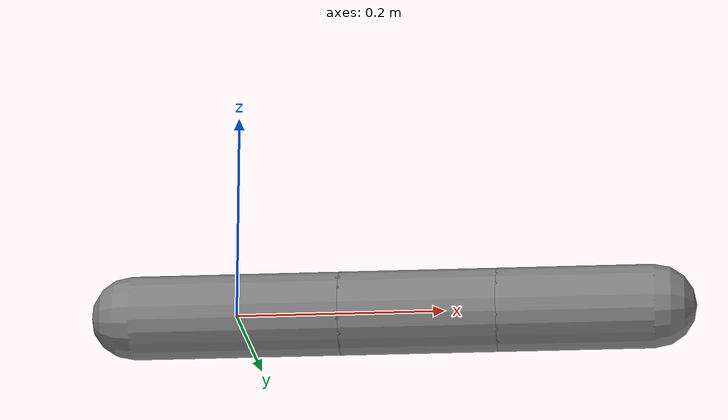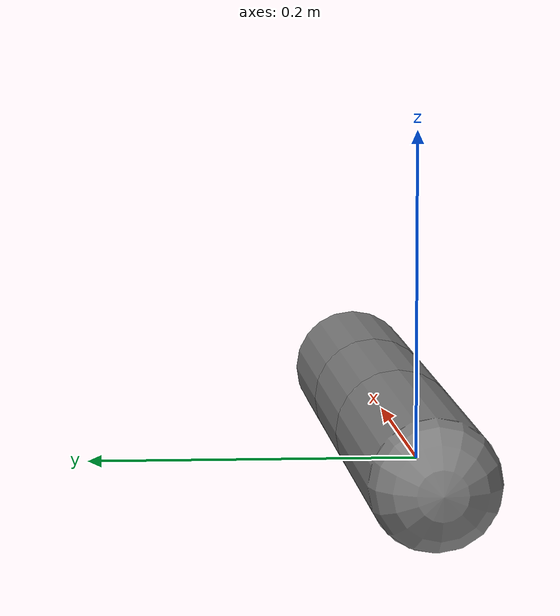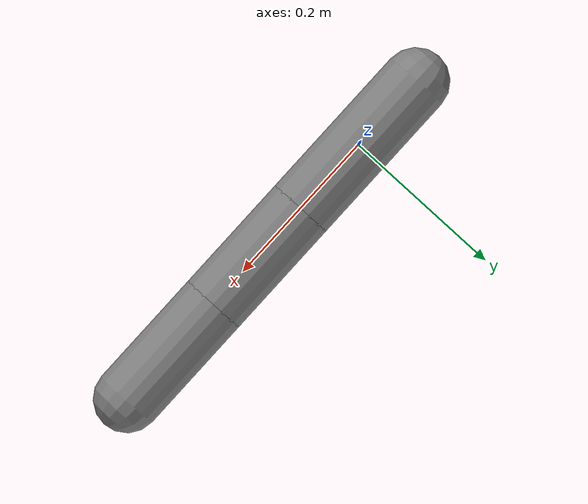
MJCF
<mujoco model="swimmer">
  <compiler autolimits="true"/>
  <option integrator="Euler" timestep="0.01" density="1000">
    <flag constraint="disable"/>
  </option>
  <worldbody>
    <light pos="0 0 3"/>
    <body name="torso" pos="0 0 0">
      <joint name="root" type="free"/>
      <geom type="capsule" fromto="-0.1 0 0 0.1 0 0" size="0.04" mass="0.5"
             contype="0" conaffinity="0"/>
      <body name="link1" pos="0.1 0 0">
        <joint name="joint1" type="hinge" axis="0 0 1" damping="0.1"/>
        <geom type="capsule" fromto="0 0 0 0.15 0 0" size="0.04" mass="0.3"
               contype="0" conaffinity="0"/>
        <body name="link2" pos="0.15 0 0">
          <joint name="joint2" type="hinge" axis="0 0 1" damping="0.1"/>
          <geom type="capsule" fromto="0 0 0 0.15 0 0" size="0.04" mass="0.3"
                 contype="0" conaffinity="0"/>
        </body>
      </body>
    </body>
  </worldbody>
  <actuator>
    <motor joint="joint1" gear="0.1"/>
    <motor joint="joint2" gear="0.1"/>
  </actuator>
</mujoco>
